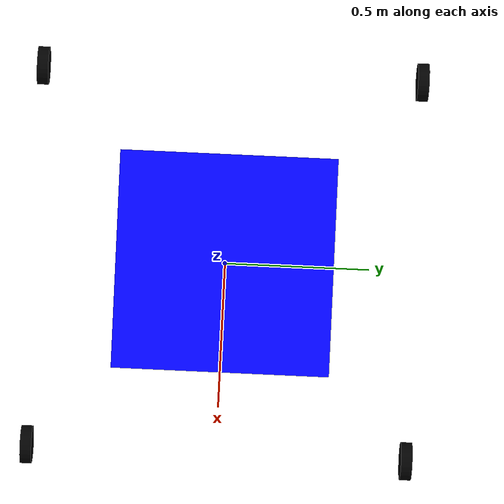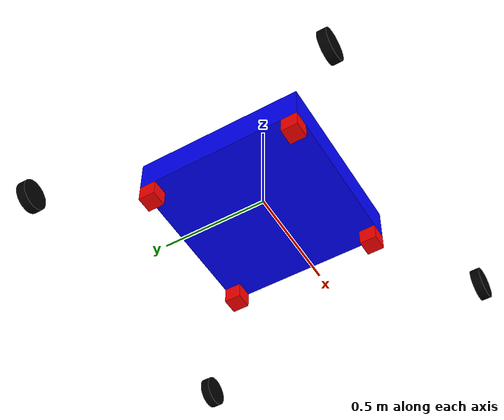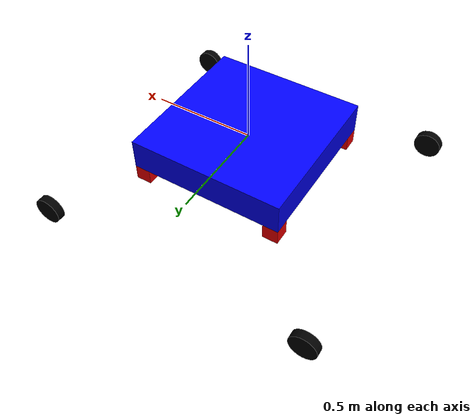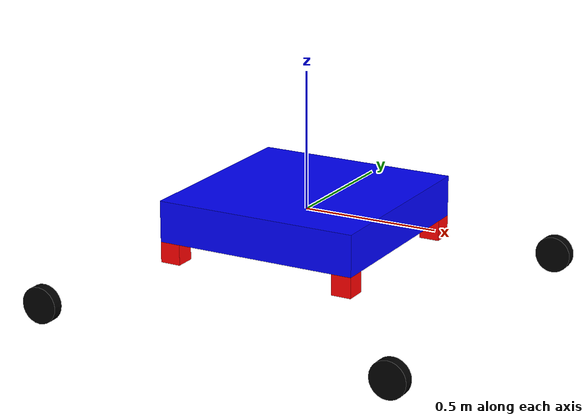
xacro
<?xml version="1.0"?>
<!-- Simple swerve base -->
<robot xmlns:xacro="http://www.ros.org/wiki/xacro" name="frcrobot">

	<!-- base width and depth -->
	<xacro:property name="base_height" value=".15" />
	<xacro:property name="base_width" value=".75" />
	<xacro:property name="base_depth" value=".75" />

	<xacro:property name="swerve_box_size" value=".075" />
	<xacro:macro name="swerve_module" params="prefix x y">
		<link name="${prefix}_angle">
			<visual>
				<geometry>
					<box size="${swerve_box_size} ${swerve_box_size} ${swerve_box_size}"/>
				</geometry>
				<origin xyz="0 0 0" rpy="0 0 0"/>
				<material name="red">
					<color rgba="1 0 0 1"/>
				</material>
			</visual>
		</link>

		<link name="${prefix}_speed">
			<visual>
				<geometry>
					<cylinder length=".04" radius=".0675"/>
				</geometry>
				<origin xyz="${x} ${y} -${base_height/2 + swerve_box_size}" rpy="${pi/2} 0 0"/>
				<material name="black">
					<color rgba="0 0 0 1"/>
				</material>
			</visual>
		</link>
		<joint name="base_to_${prefix}_angle" type="continuous">
			<parent link="base_link"/>
			<child link="${prefix}_angle"/>
			<origin xyz="${x} ${y} -${base_height/2 + swerve_box_size/2}" rpy="0 0 0"/>
		</joint>
		<joint name="${prefix}_angle_to_speed" type="continuous">
			<parent link="${prefix}_angle"/>
			<child link="${prefix}_speed"/>
			<origin xyz="0 0 0" rpy="0 0 0"/>
		</joint>
	</xacro:macro>

	<link name="base_link">
		<visual>
			<geometry>
				<box size="${base_width} ${base_depth} ${base_height}"/>
			</geometry>
			<material name="blue">
				<color rgba="0 0 1 1"/>
			</material>
		</visual>
	</link>

	<xacro:swerve_module prefix="lf" x="${base_width/2 - swerve_box_size/2}" y="${base_depth/2 - swerve_box_size/2}"/>
	<xacro:swerve_module prefix="rf" x="${base_width/2 - swerve_box_size/2}" y="-${base_depth/2 - swerve_box_size/2}"/>
	<xacro:swerve_module prefix="lr" x="-${base_width/2 - swerve_box_size/2}" y="${base_depth/2 - swerve_box_size/2}"/>
	<xacro:swerve_module prefix="rr" x="-${base_width/2 - swerve_box_size/2}" y="-${base_depth/2 - swerve_box_size/2}"/>
</robot>
